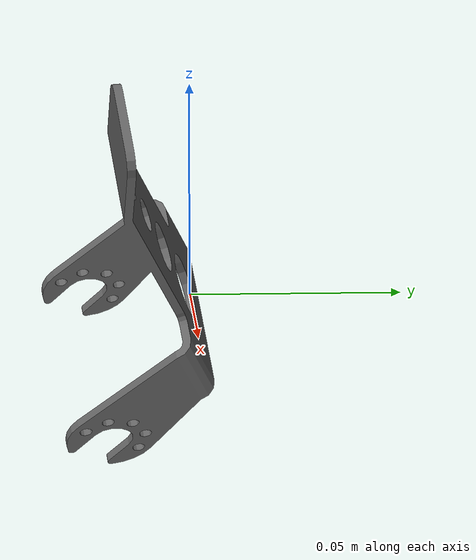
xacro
<robot name="left_finger_link"><link name="left_finger_link">
    <inertial>
      <origin rpy="0 0 0" xyz="-6.10622663543836E-16 0.0205697573116852 0.0301832532936965" />
      <mass value="0.0111981711598485" />
      <inertia ixx="9.77349829713274E-06" ixy="6.1354405537333E-20" ixz="3.95573177730842E-20" iyy="1.11277552627936E-05" iyz="2.19026618569787E-06" izz="3.8860219521149E-06" />
    </inertial>
    <visual>
      <origin rpy="0.185 0 0" xyz="0 0 0" />
      <geometry>
        <mesh filename="package://robotican_description/komodo/meshes/left_finger_link.STL" />
      </geometry>
      <material name="">
        <color rgba="0.4 0.4 0.4 1" />
      </material>
    </visual>
    <collision>
      <origin rpy="0 0 0" xyz="0 0 0" />
      <geometry>
        <mesh filename="package://robotican_description/komodo/meshes/left_finger_link.STL" />
      </geometry>
    </collision>
  </link>
  </robot>
